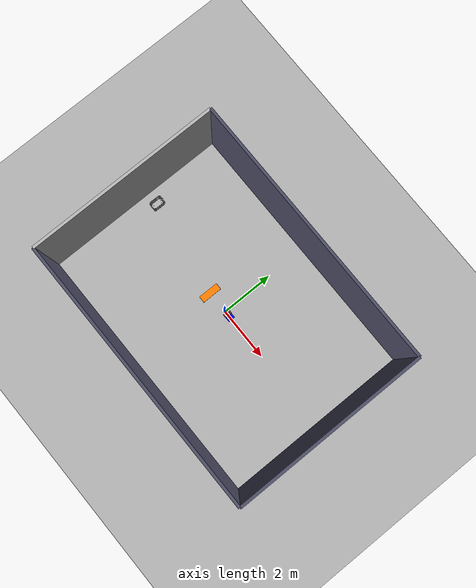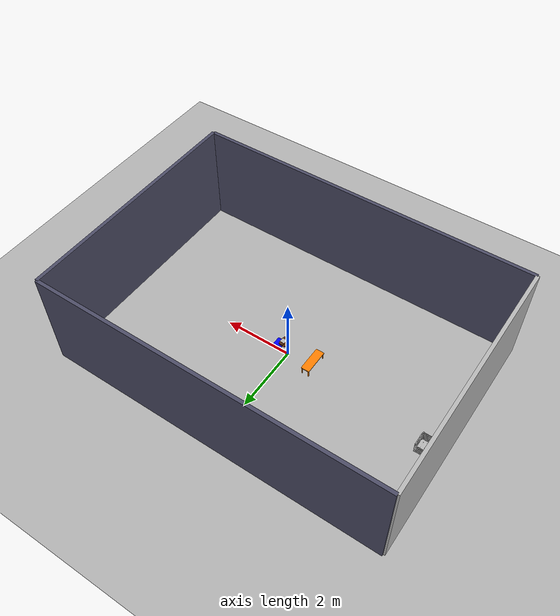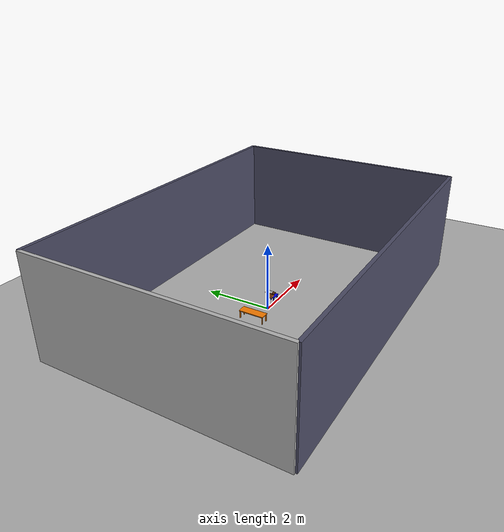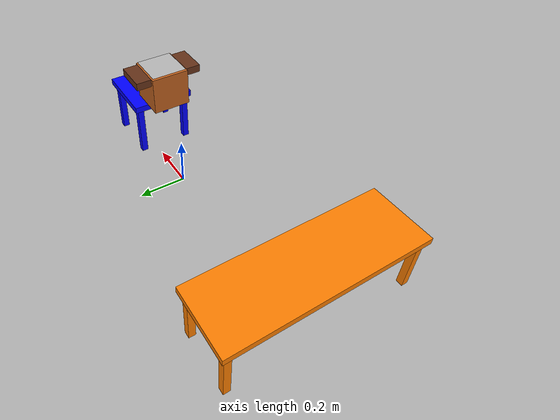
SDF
<sdf version="1.9">
 <world name="greenhouse_world">
  <physics name="ode_physics" type="ode">
   <max_step_size>0.02</max_step_size>
   <real_time_update_rate>0</real_time_update_rate>
   <real_time_factor>1</real_time_factor>
   <ode>
    <solver>
     <type>quick</type>
     <iters>500</iters>
     <sor>1.3</sor>
     <use_dynamic_moi_rescaling>false</use_dynamic_moi_rescaling>
    </solver>
    <constraints>
     <cfm>1.0000000000000001e-05</cfm>
     <erp>0.20000000000000001</erp>
     <contact_max_correcting_vel>20</contact_max_correcting_vel>
     <contact_surface_layer>0.001</contact_surface_layer>
    </constraints>
   </ode>
   <seed>12345</seed>
  </physics>
  <gravity>0 0 -9.8</gravity>
  <magnetic_field>2.5e-05 5.5e-05 4e-05</magnetic_field>
  <atmosphere type="adiabatic"/>
  <scene><ambient>0.4 0.4 0.4 1</ambient><background>0.7 0.7 0.7 1</background><shadows>true</shadows></scene>
  <model name="ground_plane">
   <static>true</static>
   <link name="link">
    <collision name="collision">
     <geometry><plane><normal>0 0 1</normal><size>10 7</size></plane></geometry>
    </collision>
    <visual name="visual">
     <geometry><plane><normal>0 0 1</normal><size>10 7</size></plane></geometry>
     <material>
      <ambient>0.3 0.3 0.3 1</ambient>
      <diffuse>0.7 0.7 0.7 1</diffuse>
      <specular>0.1 0.1 0.1 1</specular>
     </material>
    </visual>
    <inertial>
     <mass>1</mass>
     <inertia><ixx>1</ixx><ixy>0</ixy><ixz>0</ixz><iyy>1</iyy><iyz>0</iyz><izz>1</izz></inertia>
    </inertial>
   </link>
   <pose>0 0 0.1 0 -0 0</pose>
  </model>
  <model name="initial_table">
   <pose>0.263796 0 0.1 0 -0 0</pose>
   <static>true</static>
   <link name="table_top">
    <pose>0 0 0.225 0 -0 0</pose>
    <visual name="table_top_visual">
     <geometry><box><size>0.25 0.25 0.025</size></box></geometry>
     <material><ambient>0 0 1 1</ambient><diffuse>0 0 1 1</diffuse></material>
    </visual>
    <collision name="table_top_collision"><geometry><box><size>0.25 0.25 0.025</size></box></geometry></collision>
    <inertial>
     <mass>1</mass>
     <inertia><ixx>1</ixx><ixy>0</ixy><ixz>0</ixz><iyy>1</iyy><iyz>0</iyz><izz>1</izz></inertia>
    </inertial>
   </link>
   <link name="leg_1">
    <pose>0.1 0.1 0.1125 0 -0 0</pose>
    <visual name="leg_1_visual">
     <geometry><box><size>0.025 0.025 0.225</size></box></geometry>
     <material><ambient>0 0 1 1</ambient><diffuse>0 0 1 1</diffuse></material>
    </visual>
    <collision name="leg_1_collision"><geometry><box><size>0.025 0.025 0.225</size></box></geometry></collision>
    <inertial>
     <mass>1</mass>
     <inertia><ixx>1</ixx><ixy>0</ixy><ixz>0</ixz><iyy>1</iyy><iyz>0</iyz><izz>1</izz></inertia>
    </inertial>
   </link>
   <link name="leg_2">
    <pose>-0.1 0.1 0.1125 0 -0 0</pose>
    <visual name="leg_2_visual">
     <geometry><box><size>0.025 0.025 0.225</size></box></geometry>
     <material><ambient>0 0 1 1</ambient><diffuse>0 0 1 1</diffuse></material>
    </visual>
    <collision name="leg_2_collision"><geometry><box><size>0.025 0.025 0.225</size></box></geometry></collision>
    <inertial>
     <mass>1</mass>
     <inertia><ixx>1</ixx><ixy>0</ixy><ixz>0</ixz><iyy>1</iyy><iyz>0</iyz><izz>1</izz></inertia>
    </inertial>
   </link>
   <link name="leg_3">
    <pose>-0.1 -0.1 0.1125 0 -0 0</pose>
    <visual name="leg_3_visual">
     <geometry><box><size>0.025 0.025 0.225</size></box></geometry>
     <material><ambient>0 0 1 1</ambient><diffuse>0 0 1 1</diffuse></material>
    </visual>
    <collision name="leg_3_collision"><geometry><box><size>0.025 0.025 0.225</size></box></geometry></collision>
    <inertial>
     <mass>1</mass>
     <inertia><ixx>1</ixx><ixy>0</ixy><ixz>0</ixz><iyy>1</iyy><iyz>0</iyz><izz>1</izz></inertia>
    </inertial>
   </link>
   <link name="leg_4">
    <pose>0.1 -0.1 0.1125 0 -0 0</pose>
    <visual name="leg_4_visual">
     <geometry><box><size>0.025 0.025 0.225</size></box></geometry>
     <material><ambient>0 0 1 1</ambient><diffuse>0 0 1 1</diffuse></material>
    </visual>
    <collision name="leg_4_collision"><geometry><box><size>0.025 0.025 0.225</size></box></geometry></collision>
    <inertial>
     <mass>1</mass>
     <inertia><ixx>1</ixx><ixy>0</ixy><ixz>0</ixz><iyy>1</iyy><iyz>0</iyz><izz>1</izz></inertia>
    </inertial>
   </link>
   <joint name="joint_leg_1" type="fixed"><parent>table_top</parent><child>leg_1</child></joint>
   <joint name="joint_leg_2" type="fixed"><parent>table_top</parent><child>leg_2</child></joint>
   <joint name="joint_leg_3" type="fixed"><parent>table_top</parent><child>leg_3</child></joint>
   <joint name="joint_leg_4" type="fixed"><parent>table_top</parent><child>leg_4</child></joint>
  </model>
  <model name="final_table">
   <static>true</static>
   <pose>-0.8051 0 0.1 0 -0 1.57</pose>
   <link name="table_top">
    <pose>0 0 0.225 0 -0 0</pose>
    <visual name="table_top_visual">
     <geometry><box><size>0.75 0.25 0.025</size></box></geometry>
     <material><ambient>1 0.5 0 1</ambient><diffuse>1 0.5 0 1</diffuse></material>
    </visual>
    <collision name="table_top_collision"><geometry><box><size>0.75 0.25 0.025</size></box></geometry></collision>
    <inertial>
     <mass>1</mass>
     <inertia><ixx>1</ixx><ixy>0</ixy><ixz>0</ixz><iyy>1</iyy><iyz>0</iyz><izz>1</izz></inertia>
    </inertial>
   </link>
   <link name="leg_1">
    <pose>0.35 0.1 0.1125 0 -0 0</pose>
    <visual name="leg_1_visual">
     <geometry><box><size>0.025 0.025 0.225</size></box></geometry>
     <material><ambient>1 0.5 0 1</ambient><diffuse>1 0.5 0 1</diffuse></material>
    </visual>
    <collision name="leg_1_collision"><geometry><box><size>0.025 0.025 0.225</size></box></geometry></collision>
    <inertial>
     <mass>1</mass>
     <inertia><ixx>1</ixx><ixy>0</ixy><ixz>0</ixz><iyy>1</iyy><iyz>0</iyz><izz>1</izz></inertia>
    </inertial>
   </link>
   <link name="leg_2">
    <pose>-0.35 0.1 0.1125 0 -0 0</pose>
    <visual name="leg_2_visual">
     <geometry><box><size>0.025 0.025 0.225</size></box></geometry>
     <material><ambient>1 0.5 0 1</ambient><diffuse>1 0.5 0 1</diffuse></material>
    </visual>
    <collision name="leg_2_collision"><geometry><box><size>0.025 0.025 0.225</size></box></geometry></collision>
    <inertial>
     <mass>1</mass>
     <inertia><ixx>1</ixx><ixy>0</ixy><ixz>0</ixz><iyy>1</iyy><iyz>0</iyz><izz>1</izz></inertia>
    </inertial>
   </link>
   <link name="leg_3">
    <pose>-0.35 -0.1 0.1125 0 -0 0</pose>
    <visual name="leg_3_visual">
     <geometry><box><size>0.025 0.025 0.225</size></box></geometry>
     <material><ambient>1 0.5 0 1</ambient><diffuse>1 0.5 0 1</diffuse></material>
    </visual>
    <collision name="leg_3_collision"><geometry><box><size>0.025 0.025 0.225</size></box></geometry></collision>
    <inertial>
     <mass>1</mass>
     <inertia><ixx>1</ixx><ixy>0</ixy><ixz>0</ixz><iyy>1</iyy><iyz>0</iyz><izz>1</izz></inertia>
    </inertial>
   </link>
   <link name="leg_4">
    <pose>0.35 -0.1 0.1125 0 -0 0</pose>
    <visual name="leg_4_visual">
     <geometry><box><size>0.025 0.025 0.225</size></box></geometry>
     <material><ambient>1 0.5 0 1</ambient><diffuse>1 0.5 0 1</diffuse></material>
    </visual>
    <collision name="leg_4_collision"><geometry><box><size>0.025 0.025 0.225</size></box></geometry></collision>
    <inertial>
     <mass>1</mass>
     <inertia><ixx>1</ixx><ixy>0</ixy><ixz>0</ixz><iyy>1</iyy><iyz>0</iyz><izz>1</izz></inertia>
    </inertial>
   </link>
   <joint name="joint_leg_1" type="fixed"><parent>table_top</parent><child>leg_1</child></joint>
   <joint name="joint_leg_2" type="fixed"><parent>table_top</parent><child>leg_2</child></joint>
   <joint name="joint_leg_3" type="fixed"><parent>table_top</parent><child>leg_3</child></joint>
   <joint name="joint_leg_4" type="fixed"><parent>table_top</parent><child>leg_4</child></joint>
  </model>
  <model name="caja">
   <static>false</static>
   <pose>0.143998 -0.0045 0.412497 -2.9e-05 -0 1.57</pose>
   <link name="caja">
    <visual name="visual_caja">
     <geometry><box><size>0.15 0.15 0.15</size></box></geometry>
     <material><ambient>0.55 0.27 0.07 1</ambient><diffuse>0.75 0.38 0.12 1</diffuse></material>
    </visual>
    <collision name="collision_caja">
     <surface>
      <friction><ode><mu>1</mu><mu2>1</mu2></ode></friction>
      <bounce><restitution_coefficient>0</restitution_coefficient><threshold>1</threshold></bounce>
     </surface>
     <geometry><box><size>0.15 0.15 0.15</size></box></geometry>
    </collision>
    <inertial>
     <mass>0.040000000000000001</mass>
     <inertia><ixx>0.0001</ixx><ixy>0</ixy><ixz>0</ixz><iyy>0.0001</iyy><iyz>0</iyz><izz>0.0001</izz></inertia>
    </inertial>
   </link>
   <link name="plano_texturado">
    <pose>0 0 0.08 -0 -0 0</pose>
    <visual name="visual_plano">
     <geometry>
      <mesh>
       <uri>file:////home/evichan/Desktop/2024-tfg-eva-fernandez/CoordMoves/coordmoves/worlds/greenhouse_world/Atrezzo/plano/plano.dae</uri>
      </mesh>
     </geometry>
    </visual>
    <collision name="collision_plano"><geometry><box><size>0.15 0.15 0.001</size></box></geometry></collision>
    <inertial>
     <mass>0.001</mass>
     <inertia>
      <ixx>9.9999999999999995e-07</ixx>
      <iyy>9.9999999999999995e-07</iyy>
      <izz>9.9999999999999995e-07</izz>
      <ixy>0</ixy>
      <ixz>0</ixz>
      <iyz>0</iyz>
     </inertia>
    </inertial>
   </link>
   <joint name="joint_plano_texturado" type="fixed"><parent>caja</parent><child>plano_texturado</child></joint>
   <link name="asa_izquierda">
    <pose>-0.105 -0 0.06 -0 -0 0</pose>
    <visual name="visual_asa_izquierda">
     <geometry><box><size>0.06 0.125 0.03</size></box></geometry>
     <material><ambient>0.3 0.15 0.05 1</ambient><diffuse>0.4 0.2 0.1 1</diffuse></material>
    </visual>
    <collision name="collision_asa_izquierda">
     <surface>
      <friction><ode><mu>1</mu><mu2>1</mu2></ode></friction>
      <bounce><restitution_coefficient>0</restitution_coefficient><threshold>1</threshold></bounce>
     </surface>
     <geometry><box><size>0.06 0.125 0.03</size></box></geometry>
    </collision>
    <inertial>
     <mass>0.029999999999999999</mass>
     <inertia>
      <ixx>1.0000000000000001e-05</ixx>
      <ixy>0</ixy>
      <ixz>0</ixz>
      <iyy>1.0000000000000001e-05</iyy>
      <iyz>0</iyz>
      <izz>1.0000000000000001e-05</izz>
     </inertia>
    </inertial>
   </link>
   <joint name="joint_asa_izquierda" type="fixed">
    <parent>caja</parent>
    <child>asa_izquierda</child>
    <pose>-0.105 0 0.06 0 -0 0</pose>
   </joint>
   <link name="asa_derecha">
    <pose>0.105 0 0.06 -0 -0 0</pose>
    <visual name="visual_asa_derecha">
     <geometry><box><size>0.06 0.125 0.03</size></box></geometry>
     <material><ambient>0.3 0.15 0.05 1</ambient><diffuse>0.4 0.2 0.1 1</diffuse></material>
    </visual>
    <collision name="collision_asa_derecha">
     <surface>
      <friction><ode><mu>1</mu><mu2>1</mu2></ode></friction>
      <bounce><restitution_coefficient>0</restitution_coefficient><threshold>1</threshold></bounce>
     </surface>
     <geometry><box><size>0.06 0.125 0.03</size></box></geometry>
    </collision>
    <inertial>
     <mass>0.029999999999999999</mass>
     <inertia>
      <ixx>1.0000000000000001e-05</ixx>
      <ixy>0</ixy>
      <ixz>0</ixz>
      <iyy>1.0000000000000001e-05</iyy>
      <iyz>0</iyz>
      <izz>1.0000000000000001e-05</izz>
     </inertia>
    </inertial>
   </link>
   <joint name="joint_asa_derecha" type="fixed">
    <parent>caja</parent>
    <child>asa_derecha</child>
    <pose>0.105 0 0.06 0 -0 0</pose>
   </joint>
  </model>
  <model name="caja_vacia">
   <link name="link">
    <visual name="visual">
     <geometry>
      <mesh>
       <uri>file:////home/evichan/Desktop/2024-tfg-eva-fernandez/CoordMoves/coordmoves/worlds/greenhouse_world/Atrezzo/cajas/caja_vacia.dae</uri>
      </mesh>
     </geometry>
    </visual>
    <pose>0 6.5 0.01 0 -0 0</pose>
    <inertial>
     <mass>1</mass>
     <inertia><ixx>1</ixx><ixy>0</ixy><ixz>0</ixz><iyy>1</iyy><iyz>0</iyz><izz>1</izz></inertia>
    </inertial>
   </link>
   <pose>-11.8033 -5.50149 0.11 0 -0 0</pose>
   <static>true</static>
  </model>
  <model name="estructura_exterior">
   <link name="pared1">
    <visual name="visual">
     <geometry><box><size>10 0.1 3</size></box></geometry>
     <material>
      <ambient>0.3 0.3 0.35 1</ambient>
      <diffuse>0.3 0.3 0.4 1</diffuse>
      <specular>0.2 0.2 0.2 1</specular>
      <emissive>0 0 0 1</emissive>
     </material>
    </visual>
    <pose>0 3.5 1.5 0 -0 0</pose>
    <inertial>
     <mass>1</mass>
     <inertia><ixx>1</ixx><ixy>0</ixy><ixz>0</ixz><iyy>1</iyy><iyz>0</iyz><izz>1</izz></inertia>
    </inertial>
   </link>
   <link name="pared2">
    <visual name="visual">
     <geometry><box><size>10 0.1 3</size></box></geometry>
     <material>
      <ambient>0.3 0.3 0.35 1</ambient>
      <diffuse>0.3 0.3 0.4 1</diffuse>
      <specular>0.2 0.2 0.2 1</specular>
      <emissive>0 0 0 1</emissive>
     </material>
    </visual>
    <pose>0 -3.5 1.5 0 -0 0</pose>
    <inertial>
     <mass>1</mass>
     <inertia><ixx>1</ixx><ixy>0</ixy><ixz>0</ixz><iyy>1</iyy><iyz>0</iyz><izz>1</izz></inertia>
    </inertial>
   </link>
   <link name="pared3">
    <visual name="visual">
     <geometry><box><size>7 0.1 3</size></box></geometry>
     <material>
      <ambient>0.3 0.3 0.35 1</ambient>
      <diffuse>0.3 0.3 0.4 1</diffuse>
      <specular>0.2 0.2 0.2 1</specular>
      <emissive>0 0 0 1</emissive>
     </material>
    </visual>
    <pose>5 0 1.5 0 -0 1.5708</pose>
    <inertial>
     <mass>1</mass>
     <inertia><ixx>1</ixx><ixy>0</ixy><ixz>0</ixz><iyy>1</iyy><iyz>0</iyz><izz>1</izz></inertia>
    </inertial>
   </link>
   <link name="pared4">
    <visual name="visual"><geometry><box><size>7 0.1 3</size></box></geometry></visual>
    <pose>-5 0 1.5 0 -0 1.5708</pose>
    <inertial>
     <mass>1</mass>
     <inertia><ixx>1</ixx><ixy>0</ixy><ixz>0</ixz><iyy>1</iyy><iyz>0</iyz><izz>1</izz></inertia>
    </inertial>
   </link>
   <pose>0 0 0.11 0 -0 0</pose>
   <static>true</static>
  </model>
  <light name="sun" type="directional">
   <pose>0 0 10 0 -0 0</pose>
   <intensity>1</intensity>
   <direction>-0.5 0.1 -0.9</direction>
   <diffuse>0.8 0.8 0.8 1</diffuse>
   <specular>0.2 0.2 0.2 1</specular>
   <attenuation>
    <range>1000</range>
    <linear>0.01</linear>
    <constant>1</constant>
    <quadratic>0.001</quadratic>
   </attenuation>
   <spot><inner_angle>0</inner_angle><outer_angle>0</outer_angle><falloff>0</falloff></spot>
  </light>
 </world>
</sdf>
